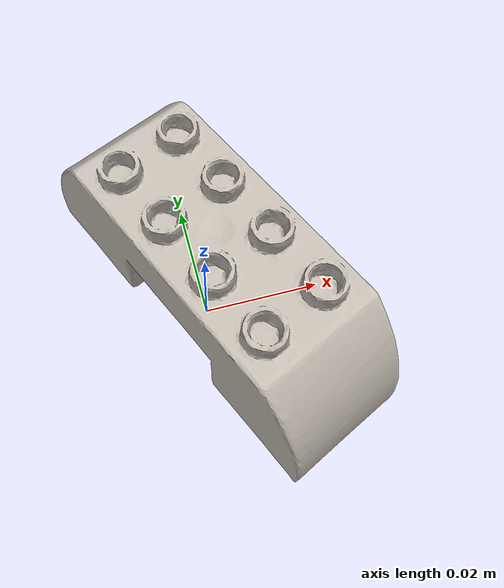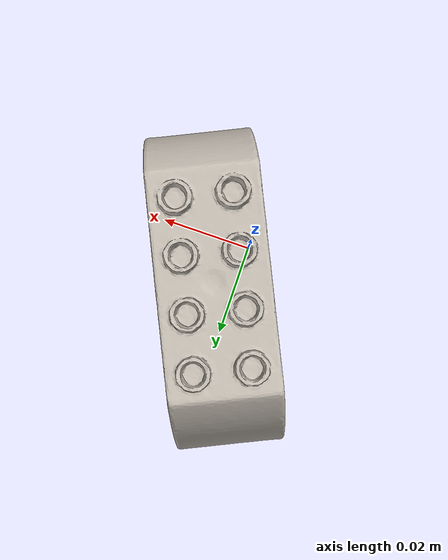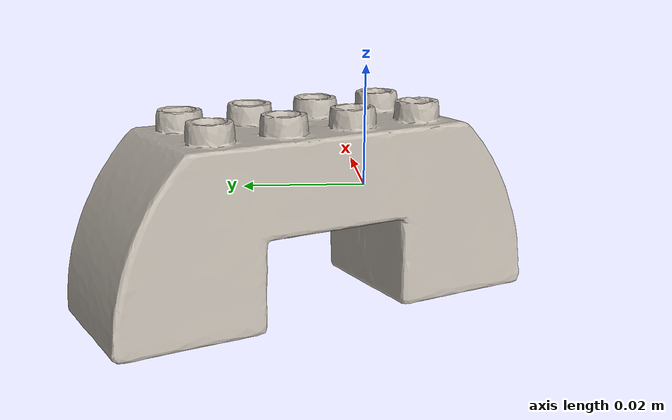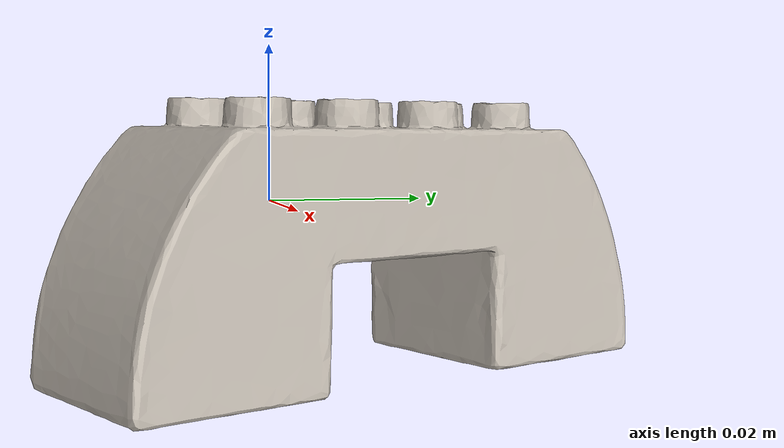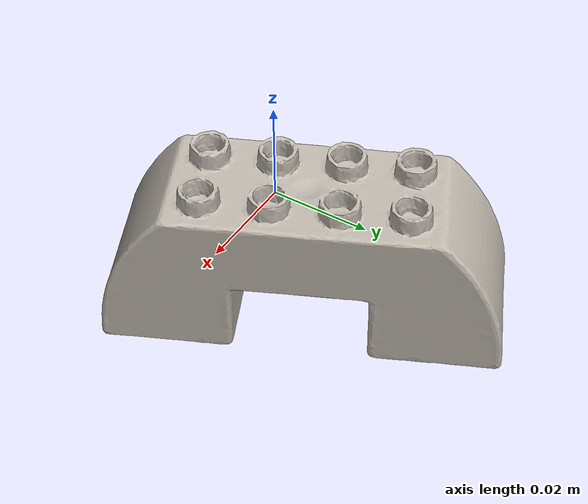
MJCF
<mujoco model="bread">
  <asset>
    <mesh file="nontextured.stl" name="obj_mesh" scale="0.8 0.8 0.8"/>
    <texture file="../../../../../textures/bread.png" type="2d" name="tex-bread" />
    <material name="bread" reflectance="0.7" texrepeat="15 15" texture="tex-bread" texuniform="true"/>
  </asset>
  <worldbody>
    <body>
      <body name="collision">
        <geom pos="0.023358 0.0501655 -0.021209" mesh="obj_mesh" type="mesh" solimp="0.998 0.998 0.001" solref="0.001 1" density="50" friction="0.95 0.3 0.1"  material="bread" group="1" condim="4"/>
      </body>
      <body name="visual">
        <geom pos="0.023358 0.0501655 -0.021209" mesh="obj_mesh" type="mesh" material="bread"  conaffinity="0" contype="0"  group="0" mass="0.0001"/>
        <geom pos="0.023358 0.0501655 -0.021209" mesh="obj_mesh" type="mesh" material="bread"  conaffinity="0" contype="0"  group="1" mass="0.0001"/>
      </body>
      <site rgba="0 0 0 0" size="0.005" pos="0 0 -0.021593" name="bottom_site"/>
      <site rgba="0 0 0 0" size="0.005" pos="0 0 0.021593" name="top_site"/>
      <site rgba="0 0 0 0" size="0.005" pos="0.034466 0.049904500000000004 0.021593" name="horizontal_radius_site"/>
    </body>
  </worldbody>
</mujoco>
